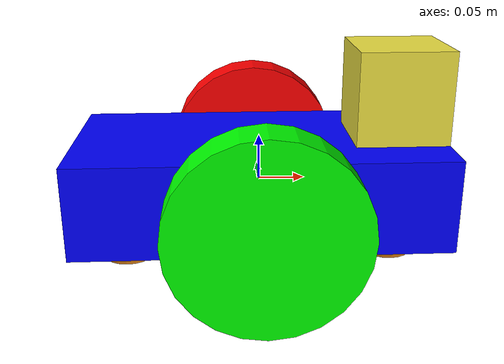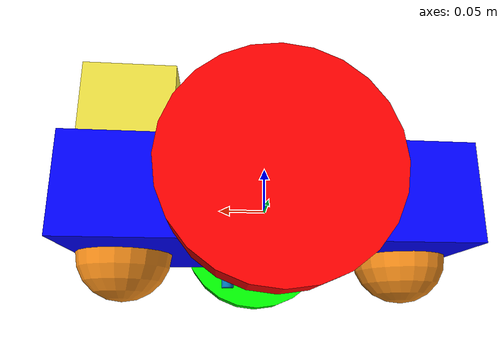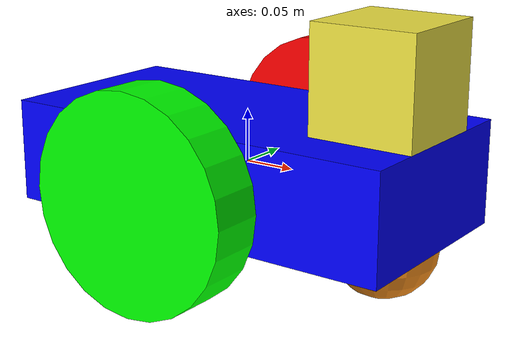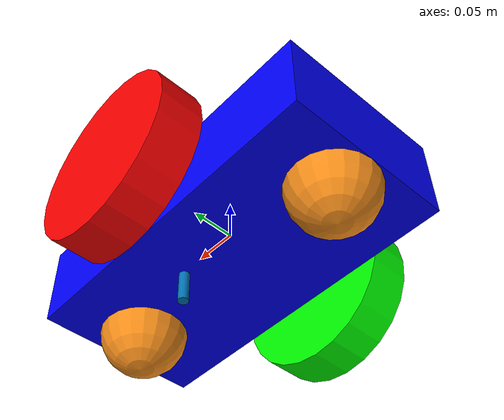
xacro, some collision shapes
<?xml version='1.0'?>
<robot name="myrobot" xmlns:xacro="http://www.ros.org/wiki/xacro">
    <xacro:include filename="$(find lab_4)/urdf/my_robot.gazebo" />
    <link name='chassis'>
        <pose>0 0 0.1 0 0 0</pose>
        <inertial>
            <mass value="5.0" />
            <origin xyz="0.0 0 0.1" rpy=" 0 0 0" />
            <inertia
                ixx="0.1" ixy="0" ixz="0"
                iyy="0.1" iyz="0"
                izz="0.1"
            />
        </inertial>
        <collision name='collision'>
            <geometry>
                <box size=".4 .2 .1" />
            </geometry>
        </collision>
        <visual name='chassis_visual'>
            <origin xyz="0 0 0" rpy=" 0 0 0" />
            <geometry>
                <box size=".4 .2 .1" />
            </geometry>
            <material name="blue">
                <color rgba="0.0 0.0 1 1.0" />
            </material>
        </visual>
        <collision name='caster_collision'>
            <origin xyz="-0.15 0 -0.05" rpy=" 0 0 0" />
            <geometry>
                <sphere radius="0.05" />
            </geometry>
        </collision>
        <visual name='caster_visual'>
            <origin xyz="-0.15 0 -0.05" rpy=" 0 0 0" />
            <geometry>
                <sphere radius="0.05" />
            </geometry>
        </visual>
        <collision name='caster_front_collision'>
            <origin xyz="0.15 0 -0.05" rpy=" 0 0 0" />
            <geometry>
                <sphere radius="0.05" />
            </geometry>
        </collision>
        <visual name='caster_front_visual'>
            <origin xyz="0.15 0 -0.05" rpy=" 0 0 0" />
            <geometry>
                <sphere radius="0.05" />
            </geometry>
        </visual>
    </link>
    <link name="left_wheel">
        <collision name="collision">
            <origin xyz="0 0 0" rpy="0 1.5707 1.5707" />
            <geometry>
                <cylinder radius="0.1" length="0.05" />
            </geometry>
        </collision>
        <visual name="left_wheel_visual">
            <origin xyz="0 0 0" rpy="0 1.5707 1.5707" />
            <geometry>
                <cylinder radius="0.1" length="0.05" />
            </geometry>
            <material name="red">
                <color rgba="1 0.0 0.0 1.0" />
            </material>
        </visual>
        <inertial>
            <origin xyz="0 0 0" rpy="0 1.5707 1.5707" />
            <mass value="5" />
            <inertia
                ixx=".1" ixy="0.0" ixz="0.0"
                iyy=".1" iyz="0.0"
                izz=".1" />
        </inertial>
    </link>
    <link name="right_wheel">
        <collision name="collision">
            <origin xyz="0 0 0" rpy="0 1.5707 1.5707" />
            <geometry>
                <cylinder radius="0.1" length="0.05" />
            </geometry>
        </collision>
        <visual name="right_wheel_visual">
            <origin xyz="0 0 0" rpy="0 1.5707 1.5707" />
            <geometry>
                <cylinder radius="0.1" length="0.05" />
            </geometry>
            <material name="green">
                <color rgba="0.0 1 0.0 1.0" />
            </material>
        </visual>
        <inertial>
            <origin xyz="0 0 0" rpy="0 1.5707 1.5707" />
            <mass value="5" />
            <inertia
                ixx=".1" ixy="0.0" ixz="0.0"
                iyy=".1" iyz="0.0"
                izz=".1" />
        </inertial>
    </link>
    <joint type="continuous" name="left_wheel_hinge">
        <origin xyz="0 0.15 0" rpy="0 0 0" />
        <child link="left_wheel" />
        <parent link="chassis" />
        <axis xyz="0 1 0" rpy="0 0 0" />
        <joint_properties damping="0.0" friction="0.0" />
    </joint>
    <joint type="continuous" name="right_wheel_hinge">
        <origin xyz="0 -0.15 0" rpy="0 0 0" />
        <child link="right_wheel" />
        <parent link="chassis" />
        <axis xyz="0 1 0" rpy="0 0 0" />
        <joint_properties damping="0.0" friction="0.0" />
    </joint>
    <!-- Hokuyo Laser -->
    <link name="hokuyo_link">
        <collision>
            <origin xyz="0 0 0" rpy="0 0 0" />
            <geometry>
                <box size="0.1 0.1 0.1" />
            </geometry>
        </collision>
        <visual>
            <origin xyz="0 0 0" rpy="0 0 0" />
            <geometry>
                <mesh filename="package://lab_4/meshes/hokuyo.dae" />
            </geometry>
        </visual>
        <inertial>
            <mass value="1e-5" />
            <origin xyz="0 0 0" rpy="0 0 0" />
            <inertia ixx="1e-6" ixy="0" ixz="0" iyy="1e-6" iyz="0" izz="1e-6" />
        </inertial>
    </link>
    <joint name="hokuyo_joint" type="fixed">
        <axis xyz="0 1 0" />
        <origin xyz="0.15 0 0.1" rpy="0 0 0" />
        <parent link="chassis" />
        <child link="hokuyo_link" />
    </joint>

    <link name="imu1_1">
  <inertial>
    <origin xyz="6.915301664633944e-14 3.469446951953614e-18 0.04325402861395042" rpy="0 0 0"/>
    <mass value="0.07443112556922718"/>
    <inertia ixx="5.2e-05" iyy="5.2e-05" izz="1e-06" ixy="-0.0" iyz="0.0" ixz="-0.0"/>
  </inertial>
  <visual>
    <origin xyz="0.04 0.03 -0.087" rpy="0 0 0"/>
    <geometry>
      <mesh filename="package://lab_4/meshes/imu1_1.stl" scale="0.001 0.001 0.001"/>
    </geometry>
  </visual>
  <collision>
    <origin xyz="0.04 0.03 -0.087" rpy="0 0 0"/>
    <geometry>
      <mesh filename="package://lab_4/meshes/imu1_1.stl" scale="0.001 0.001 0.001"/>
    </geometry>
  </collision>
</link>
<joint name="Rigid 8" type="fixed">
  <origin xyz="0.04 0.03 -0.087" rpy="0 0 0"/>
  <parent link="chassis"/>
  <child link="imu1_1"/>
</joint>

</robot>
